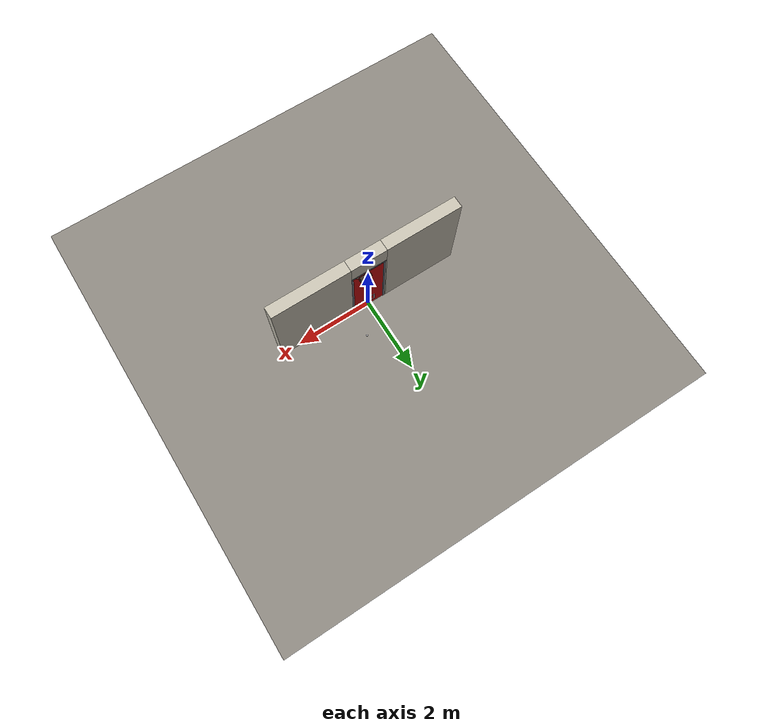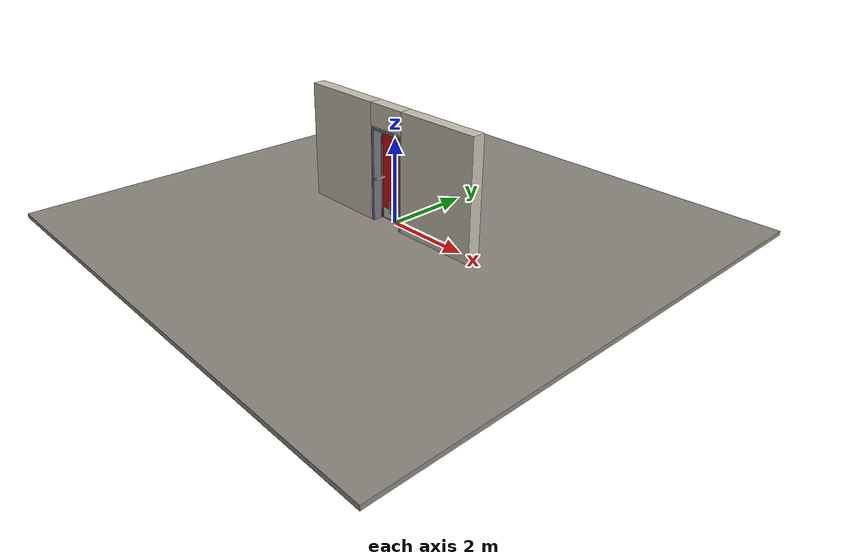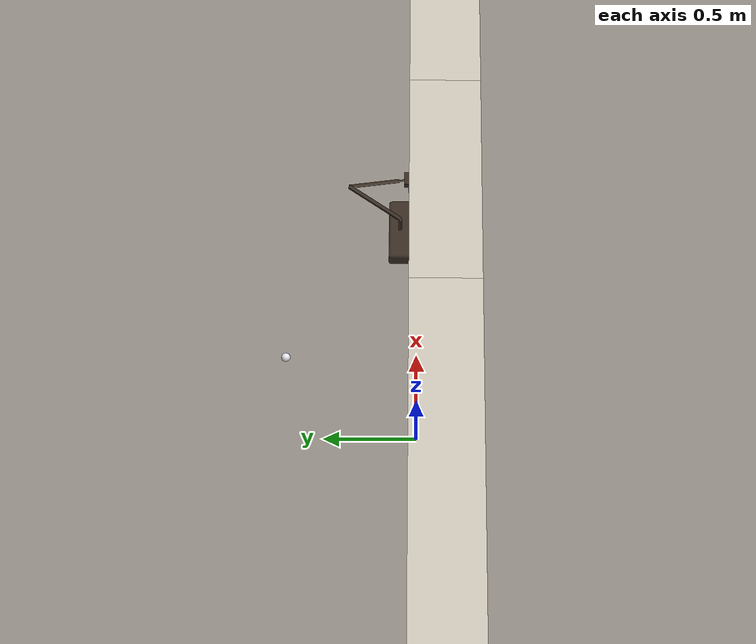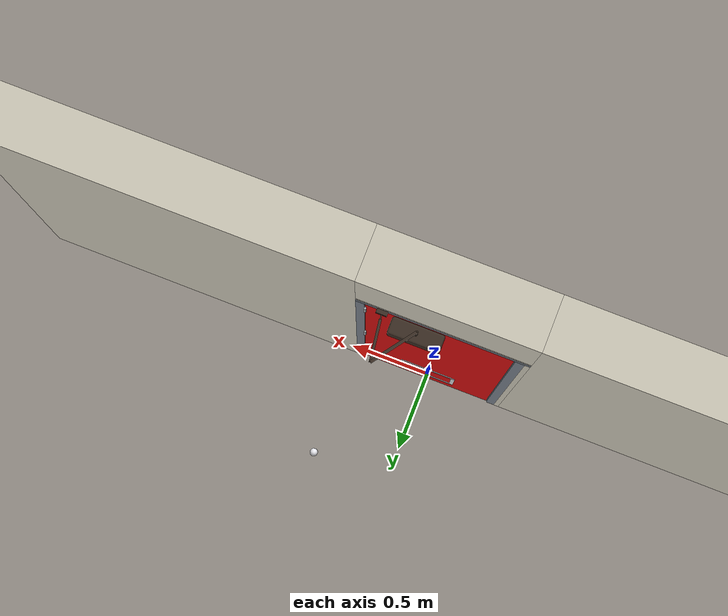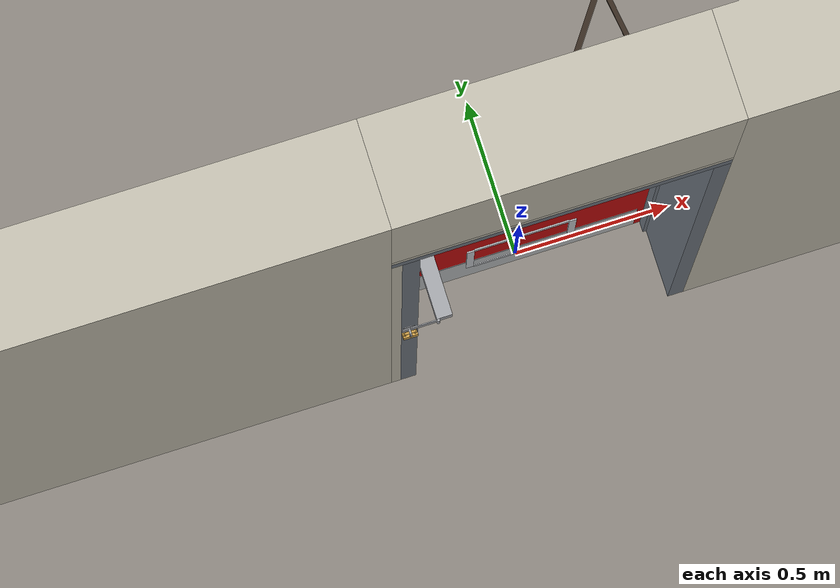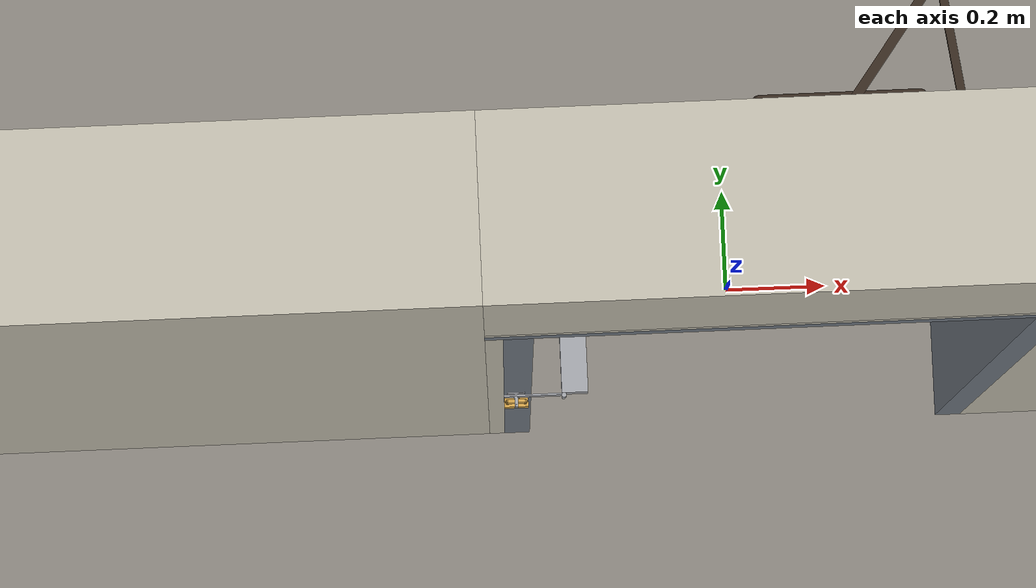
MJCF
<?xml version="1.0" ?>
<mujoco model="db0582_swing_single_full">
  <compiler angle="radian" meshdir="../../hardware" texturedir="../../textures" autolimits="true" inertiafromgeom="false"/>
  <option timestep="0.002" integrator="implicitfast" cone="elliptic" impratio="10" noslip_iterations="3">
    <flag multiccd="enable"/>
  </option>
  <size memory="16M"/>
  <default>
    <geom condim="4" solref="0.005 1" solimp="0.95 0.99 0.001"/>
    <joint solreflimit="0.005 1" solimplimit="0.95 0.99 0.001"/>
    <tendon solreflimit="0.005 1"/>
    <equality solref="0.002 1"/>
  </default>
  <visual>
    <headlight ambient="0.4 0.4 0.4" diffuse="0.7 0.7 0.7" specular="0.2 0.2 0.2"/>
    <quality shadowsize="4096"/>
    <map znear="0.01" zfar="60"/>
  </visual>
  <asset>
    <mesh name="closer_body_fdc4667657" file="closer_body_fdc4667657.obj"/>
    <mesh name="hinge_e22b26c0c1" file="hinge_e22b26c0c1.obj"/>
    <mesh name="hinge_jamb_e1d088f8dc" file="hinge_jamb_e1d088f8dc.obj"/>
    <material name="mat_floor" rgba="0.55 0.53 0.5 1" specular="0.2" shininess="0.15" reflectance="0"/>
    <material name="mat_wall" rgba="0.78 0.76 0.7 1" specular="0.2" shininess="0.1" reflectance="0"/>
    <material name="mat_leaf" rgba="0.8 0.05 0.05 1" specular="0.23" shininess="0.4" reflectance="0.02"/>
    <material name="mat_hinge" rgba="0.65 0.66 0.68 1" specular="0.74" shininess="0.5" reflectance="0.36"/>
    <material name="mat_op_steel_galvanized" rgba="0.65 0.66 0.68 1" specular="0.74" shininess="0.5" reflectance="0.36"/>
    <material name="mat_padlock" rgba="0.85 0.66 0.3 1" specular="0.8" shininess="0.75" reflectance="0.4"/>
    <material name="mat_frame" rgba="0.45 0.48 0.52 1" specular="0.32" shininess="0.6" reflectance="0.08"/>
    <material name="mat_closer" rgba="0.22 0.17 0.13 1" specular="0.8" shininess="0.6" reflectance="0.4"/>
    <material name="mat_kick" rgba="0.75 0.76 0.77 1" specular="0.8" shininess="0.65" reflectance="0.4"/>
    <material name="mat_vent" rgba="0.8 0.81 0.83 1" specular="0.8" shininess="0.6" reflectance="0.4"/>
    <material name="mat_stop" rgba="0.9 0.9 0.92 1" specular="0.8" shininess="0.9" reflectance="0.4"/>
    <texture name="skybox" type="skybox" builtin="gradient" rgb1="0.6 0.7 0.85" rgb2="0.9 0.92 0.95" width="256" height="256"/>
  </asset>
  <worldbody>
    <light name="sun" pos="1.5 -2.5 4" dir="-0.3 0.5 -0.8" directional="true" diffuse="0.8 0.8 0.8" specular="0.3 0.3 0.3" castshadow="true"/>
    <light name="fill" pos="-1.5 2.5 3" dir="0.3 -0.5 -0.7" directional="true" diffuse="0.35 0.35 0.4" castshadow="false"/>
    <camera name="robot_view" pos="0 -2.758812 1.812087" xyaxes="1 0 0 0 0.26963 0.962964" fovy="52"/>
    <camera name="far_view" pos="0 2.516812 1.812087" xyaxes="-1 0 0 0 -0.26963 0.962964" fovy="52"/>
    <camera name="iso" pos="-2.004737 -2.336762 2.234138" xyaxes="0.741536 -0.670913 0 0.242917 0.268487 0.932151" fovy="46"/>
    <camera name="detail_handle" pos="-0.2605 -1.085 1.296" xyaxes="0.97561 0.219512 0 -0.070934 0.315262 0.94635" fovy="38"/>
    <geom name="floor" type="box" size="6 6 0.05" pos="0 0 -0.05" material="mat_floor" group="0" contype="1" conaffinity="1" friction="0.8 0.005 0.0001" density="2400"/>
    <geom name="wall_left" type="box" size="1.00475 0.15 1.3735" pos="-1.49525 -0.121 1.3735" material="mat_wall" group="0" contype="1" conaffinity="1" friction="0.6 0.005 0.0001" density="800"/>
    <geom name="wall_right" type="box" size="1.01975 0.15 1.3735" pos="1.48025 -0.121 1.3735" material="mat_wall" group="0" contype="1" conaffinity="1" friction="0.6 0.005 0.0001" density="800"/>
    <geom name="wall_header" type="box" size="0.4755 0.15 0.26" pos="-0.015 -0.121 2.487" material="mat_wall" group="0" contype="1" conaffinity="1" friction="0.6 0.005 0.0001" density="800"/>
    <geom name="hinge_0_jamb" type="mesh" mesh="hinge_jamb_e1d088f8dc" pos="0.4075 0.029 0.259" quat="0 0 0 1" material="mat_hinge" group="1" contype="0" conaffinity="0" density="7850"/>
    <geom name="hinge_1_jamb" type="mesh" mesh="hinge_jamb_e1d088f8dc" pos="0.4075 0.029 1.076" quat="0 0 0 1" material="mat_hinge" group="1" contype="0" conaffinity="0" density="7850"/>
    <geom name="hinge_2_jamb" type="mesh" mesh="hinge_jamb_e1d088f8dc" pos="0.4075 0.029 1.963" quat="0 0 0 1" material="mat_hinge" group="1" contype="0" conaffinity="0" density="7850"/>
    <geom name="leaf_staple_leg_n" type="box" size="0.003 0.0025 0.013" pos="-0.4385 -0.284 1.0285" quat="0 0 -0.707107 0.707107" material="mat_op_steel_galvanized" group="0" contype="1" conaffinity="1" friction="0.6 0.005 0.0001" density="7800"/>
    <geom name="leaf_staple_leg_p" type="box" size="0.003 0.0025 0.013" pos="-0.4385 -0.284 1.0035" quat="0 0 -0.707107 0.707107" material="mat_op_steel_galvanized" group="0" contype="1" conaffinity="1" friction="0.6 0.005 0.0001" density="7800"/>
    <geom name="leaf_staple_bridge" type="box" size="0.003 0.015 0.0025" pos="-0.4385 -0.2945 1.016" quat="0 0 -0.707107 0.707107" material="mat_op_steel_galvanized" group="0" contype="1" conaffinity="1" friction="0.6 0.005 0.0001" density="7800"/>
    <geom name="leaf_staple_base" type="box" size="0.016 0.021 0.001" pos="-0.4385 -0.272 1.016" quat="0 0 -0.707107 0.707107" material="mat_op_steel_galvanized" group="1" contype="0" conaffinity="0" density="7800"/>
    <geom name="leaf_padlock_shackle" type="capsule" size="0.004 0.016" pos="-0.4385 -0.286 1.016" quat="0.707107 0 -0.707107 0" material="mat_padlock" group="1" contype="0" conaffinity="0" density="7850"/>
    <geom name="leaf_padlock_leg_a" type="capsule" size="0.004 0.012" pos="-0.4225 -0.286 1.004" quat="0 1 0 0" material="mat_padlock" group="1" contype="0" conaffinity="0" density="7850"/>
    <geom name="leaf_padlock_leg_b" type="capsule" size="0.004 0.012" pos="-0.4545 -0.286 1.004" quat="0 1 0 0" material="mat_padlock" group="1" contype="0" conaffinity="0" density="7850"/>
    <geom name="leaf_padlock_body" type="box" size="0.022 0.018 0.008" pos="-0.4385 -0.286 0.974" quat="0 0 -0.707107 0.707107" material="mat_padlock" group="0" contype="1" conaffinity="1" friction="0.6 0.005 0.0001" density="7850"/>
    <geom name="jamb_hinge" type="box" size="0.025 0.15 1.0735" pos="0.4355 -0.121 1.0735" material="mat_frame" group="0" contype="1" conaffinity="1" friction="0.6 0.005 0.0001" density="300"/>
    <geom name="jamb_strike" type="box" size="0.025 0.15 1.0735" pos="-0.4355 -0.121 1.0735" material="mat_frame" group="0" contype="1" conaffinity="1" friction="0.6 0.005 0.0001" density="300"/>
    <geom name="stud_strike" type="box" size="0.015 0.15 1.0735" pos="-0.4755 -0.121 1.0735" material="mat_wall" group="0" contype="1" conaffinity="1" friction="0.6 0.005 0.0001" density="500"/>
    <geom name="jamb_head" type="box" size="0.4755 0.15 0.025" pos="-0.015 -0.121 2.172" material="mat_frame" group="0" contype="1" conaffinity="1" friction="0.6 0.005 0.0001" density="300"/>
    <geom name="head_stud" type="box" size="0.4755 0.15 0.015" pos="-0.015 -0.121 2.212" material="mat_wall" group="0" contype="1" conaffinity="1" friction="0.6 0.005 0.0001" density="500"/>
    <geom name="stop_hinge" type="box" size="0.0055 0.016 1.0735" pos="0.405 -0.0385 1.0735" material="mat_frame" group="0" contype="1" conaffinity="1" friction="0.6 0.005 0.0001" density="300"/>
    <geom name="stop_strike" type="box" size="0.0055 0.016 1.0735" pos="-0.405 -0.0385 1.0735" material="mat_frame" group="0" contype="1" conaffinity="1" friction="0.6 0.005 0.0001" density="300"/>
    <geom name="stop_head" type="box" size="0.4105 0.016 0.0055" pos="0 -0.0385 2.1415" material="mat_frame" group="0" contype="1" conaffinity="1" friction="0.6 0.005 0.0001" density="300"/>
    <geom name="closer_bracket" type="box" size="0.03 0.012 0.014" pos="0.3105 0.041 2.177" material="mat_closer" group="1" contype="0" conaffinity="0" density="2700"/>
    <geom name="floor_stop_dome" type="sphere" size="0.025" pos="0.487653 0.715677 0" material="mat_stop" group="0" contype="1" conaffinity="1" friction="0.6 0.005 0.0001" density="7000"/>
    <site name="approach_point" pos="0 -1.5 0" quat="1 0 0 0" size="0.05" rgba="0.2 0.9 0.2 0.5" group="4"/>
    <site name="goal_point" pos="0 1.5 0" quat="1 0 0 0" size="0.05" rgba="0.2 0.9 0.2 0.5" group="4"/>
    <site name="door_plane_center" pos="0 0 1.0735" quat="1 0 0 0" size="0.02" rgba="0.2 0.9 0.2 0.5" group="4"/>
    <body name="leaf" pos="0.4105 0 0">
      <inertial pos="-0.402294 0.005363 1.220605" mass="61.501241" quat="0.511904 0.461871 0.523007 -0.501092" diaginertia="3.231664836 28.991489118 31.972769888"/>
      <joint name="leaf_hinge" type="hinge" axis="0 0 -1" pos="-0.003 0.029 0" limited="true" range="0 0.0015" damping="12.168374" frictionloss="0.75031" stiffness="12.197635" springref="-2.749713" armature="0.02"/>
      <geom name="leaf_slab" type="box" size="0.4065 0.022 1.067" pos="-0.4095 0 1.076" material="mat_leaf" group="0" contype="1" conaffinity="1" friction="0.4 0.005 0.0001" density="1"/>
      <geom name="hinge_0" type="mesh" mesh="hinge_e22b26c0c1" pos="-0.003 0.029 0.259" quat="0 0 0 1" material="mat_hinge" group="1" contype="0" conaffinity="0" density="7850"/>
      <geom name="hinge_1" type="mesh" mesh="hinge_e22b26c0c1" pos="-0.003 0.029 1.076" quat="0 0 0 1" material="mat_hinge" group="1" contype="0" conaffinity="0" density="7850"/>
      <geom name="hinge_2" type="mesh" mesh="hinge_e22b26c0c1" pos="-0.003 0.029 1.963" quat="0 0 0 1" material="mat_hinge" group="1" contype="0" conaffinity="0" density="7850"/>
      <geom name="leaf_hasp_plate" type="box" size="0.024 0.0215 0.1265" pos="-0.741 -0.1485 1.016" quat="0 0 -0.707107 0.707107" material="mat_op_steel_galvanized" group="1" contype="0" conaffinity="0" density="7800"/>
      <geom name="closer_body" type="mesh" mesh="closer_body_fdc4667657" pos="-0.3 0.022 2.054" quat="0 0 0.707107 0.707107" material="mat_closer" group="1" contype="0" conaffinity="0" density="2000"/>
      <geom name="closer_body_col" type="box" size="0.145 0.05 0.035" pos="-0.3 0.072 2.054" material="mat_closer" group="3" contype="1" conaffinity="1" rgba="0.8 0.3 0.3 0.25" friction="0.6 0.005 0.0001" density="2000"/>
      <geom name="closer_pinion_shaft" type="cylinder" size="0.008 0.0615" pos="-0.3 0.072 2.1155" material="mat_closer" group="1" contype="0" conaffinity="0" density="2700"/>
      <geom name="kick_plate_n" type="box" size="0.3765 0.0008 0.125" pos="-0.4095 -0.0228 0.144" material="mat_kick" group="2" contype="0" conaffinity="0" density="7900"/>
      <geom name="louver_vent_stile_n_l" type="box" size="0.012 0.002 0.137" pos="-0.5715 -0.024 0.314" material="mat_vent" group="2" contype="0" conaffinity="0" density="2700"/>
      <geom name="louver_vent_stile_n_r" type="box" size="0.012 0.002 0.137" pos="-0.2475 -0.024 0.314" material="mat_vent" group="2" contype="0" conaffinity="0" density="2700"/>
      <geom name="louver_vent_rail_n_b" type="box" size="0.15 0.002 0.012" pos="-0.4095 -0.024 0.177" material="mat_vent" group="2" contype="0" conaffinity="0" density="2700"/>
      <geom name="louver_vent_rail_n_t" type="box" size="0.15 0.002 0.012" pos="-0.4095 -0.024 0.451" material="mat_vent" group="2" contype="0" conaffinity="0" density="2700"/>
      <geom name="louver_vent_stile_p_l" type="box" size="0.012 0.002 0.137" pos="-0.5715 0.024 0.314" material="mat_vent" group="2" contype="0" conaffinity="0" density="2700"/>
      <geom name="louver_vent_stile_p_r" type="box" size="0.012 0.002 0.137" pos="-0.2475 0.024 0.314" material="mat_vent" group="2" contype="0" conaffinity="0" density="2700"/>
      <geom name="louver_vent_rail_p_b" type="box" size="0.15 0.002 0.012" pos="-0.4095 0.024 0.177" material="mat_vent" group="2" contype="0" conaffinity="0" density="2700"/>
      <geom name="louver_vent_rail_p_t" type="box" size="0.15 0.002 0.012" pos="-0.4095 0.024 0.451" material="mat_vent" group="2" contype="0" conaffinity="0" density="2700"/>
      <geom name="louver_vent_slat_0" type="box" size="0.15 0.0015 0.015" pos="-0.4095 0 0.209833" quat="0.965926 -0.258819 0 0" material="mat_vent" group="2" contype="0" conaffinity="0" density="2700"/>
      <geom name="louver_vent_slat_1" type="box" size="0.15 0.0015 0.015" pos="-0.4095 0 0.2515" quat="0.965926 -0.258819 0 0" material="mat_vent" group="2" contype="0" conaffinity="0" density="2700"/>
      <geom name="louver_vent_slat_2" type="box" size="0.15 0.0015 0.015" pos="-0.4095 0 0.293167" quat="0.965926 -0.258819 0 0" material="mat_vent" group="2" contype="0" conaffinity="0" density="2700"/>
      <geom name="louver_vent_slat_3" type="box" size="0.15 0.0015 0.015" pos="-0.4095 0 0.334833" quat="0.965926 -0.258819 0 0" material="mat_vent" group="2" contype="0" conaffinity="0" density="2700"/>
      <geom name="louver_vent_slat_4" type="box" size="0.15 0.0015 0.015" pos="-0.4095 0 0.3765" quat="0.965926 -0.258819 0 0" material="mat_vent" group="2" contype="0" conaffinity="0" density="2700"/>
      <geom name="louver_vent_slat_5" type="box" size="0.15 0.0015 0.015" pos="-0.4095 0 0.418167" quat="0.965926 -0.258819 0 0" material="mat_vent" group="2" contype="0" conaffinity="0" density="2700"/>
      <site name="leaf_edge_mid" pos="-0.816 0 1.067" quat="1 0 0 0" size="0.02" rgba="0.2 0.9 0.2 0.5" group="4"/>
      <body name="leaf_hasp" pos="-0.761 -0.275 1.016">
        <inertial pos="-0.044414 -0.001981 0" mass="0.111564" quat="0.005888 0.005888 0.707082 0.707082" diaginertia="0.00001275 0.00014369 0.00015595"/>
        <joint name="leaf_hasp_hinge" type="hinge" axis="0 0 1" limited="true" range="0 0.0015" damping="0.02" frictionloss="0.05" armature="0.005"/>
        <geom name="leaf_hasp_strap" type="box" size="0.055 0.0175 0.0015" pos="-0.055 -0.0015 0" quat="0 0 -0.707107 0.707107" material="mat_op_steel_galvanized" group="0" contype="1" conaffinity="1" friction="0.6 0.005 0.0001" density="7800"/>
        <geom name="leaf_hasp_knuckle" type="cylinder" size="0.0045 0.0215" pos="0 -0.004 0" material="mat_op_steel_galvanized" group="1" contype="0" conaffinity="0" density="7850"/>
        <site name="leaf_hasp_grip" pos="-0.09 -0.01 0" quat="1 0 0 0" size="0.01" rgba="0.2 0.9 0.2 0.5" group="4"/>
      </body>
      <body name="closer_arm_main" pos="-0.3 0.072 2.177" quat="0.890947 0 0 0.454107">
        <inertial pos="0.14 0 0" mass="0.12096" quat="1 0 0 0" diaginertia="0.000003588 0.00079128 0.000792852"/>
        <joint name="closer_pinion" type="hinge" axis="0 0 1" limited="false" damping="0.01" armature="0.002"/>
        <geom name="closer_arm_main_geom" type="box" size="0.14 0.008 0.005" pos="0.14 0 0" material="mat_closer" group="1" contype="0" conaffinity="0" density="2700"/>
        <body name="closer_arm_fore" pos="0.28 0 0" quat="0.373215 0 0 -0.927745">
          <inertial pos="0.128088 0 0" mass="0.076531" quat="1 0 0 0" diaginertia="0.000001771 0.000437665 0.000438201"/>
          <joint name="closer_elbow" type="hinge" axis="0 0 1" limited="false" damping="0.01" armature="0.002"/>
          <geom name="closer_arm_fore_geom" type="box" size="0.1125 0.007 0.004" pos="0.1125 0 0" material="mat_closer" group="1" contype="0" conaffinity="0" density="2700"/>
          <geom name="closer_fore_neck" type="box" size="0.0175 0.003 0.003" pos="0.2425 0 0" material="mat_closer" group="1" contype="0" conaffinity="0" density="2700"/>
          <geom name="closer_fore_pivot" type="cylinder" size="0.005 0.012" pos="0.26 0 0" material="mat_closer" group="1" contype="0" conaffinity="0" density="2700"/>
        </body>
      </body>
    </body>
  </worldbody>
  <equality>
    <connect name="closer_arm_connect" body1="closer_arm_fore" body2="world" anchor="0.26 0 0" active="true"/>
  </equality>
  <contact>
    <exclude body1="closer_arm_main" body2="leaf"/>
    <exclude body1="closer_arm_fore" body2="leaf"/>
    <exclude body1="closer_arm_main" body2="closer_arm_fore"/>
  </contact>
  <sensor>
    <jointpos name="leaf_hinge_pos" joint="leaf_hinge"/>
    <jointvel name="leaf_hinge_vel" joint="leaf_hinge"/>
    <jointpos name="leaf_hasp_hinge_pos" joint="leaf_hasp_hinge"/>
    <jointvel name="leaf_hasp_hinge_vel" joint="leaf_hasp_hinge"/>
  </sensor>
</mujoco>
